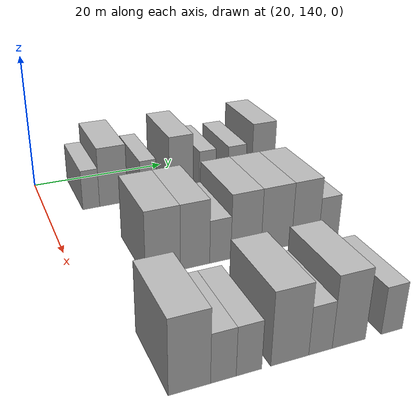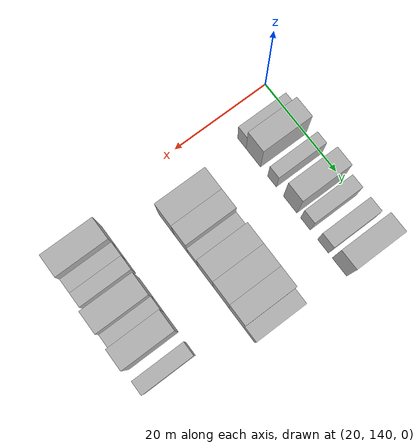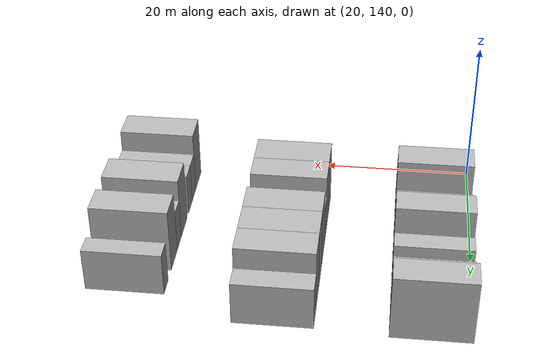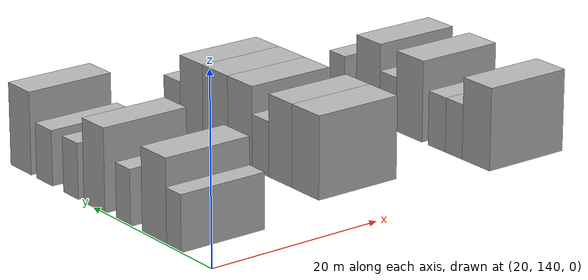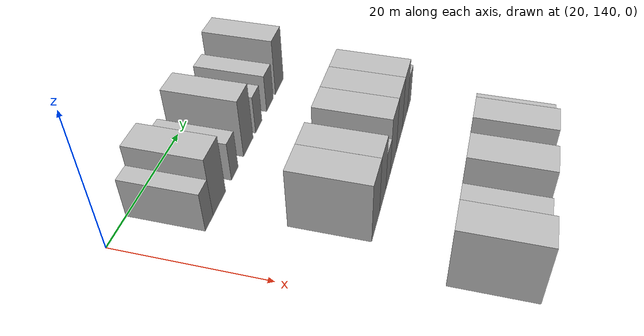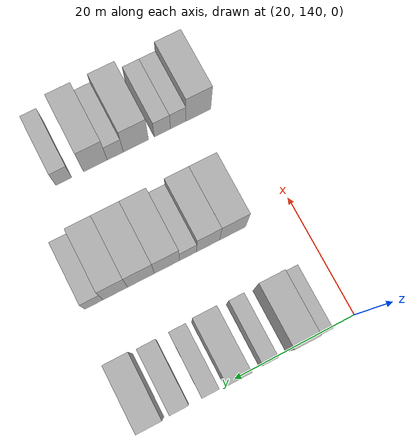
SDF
<sdf version="1.6">
 <world name="default">
  <model name="building_90">
   <static>1</static>
   <pose>25.0000 146.1806 0 0.000000 0.000000 0.000000</pose>
   <link name="link">
    <pose>0 0 3.00 0 0 0</pose>
    <collision name="collision"><geometry><box><size>10.0000 2.4386 6.0000</size></box></geometry></collision>
    <visual name="visual">
     <cast_shadows>0</cast_shadows>
     <geometry><box><size>10.0000 2.4386 6.0000</size></box></geometry>
     <material>
      <script>
       <uri>model://HANNAS_wall/materials/scripts</uri>
       <uri>model://HANNAS_wall/materials/textures</uri>
       <name>vrc/HANNAS_wall</name>
      </script>
     </material>
    </visual>
   </link>
  </model>
  <model name="building_91">
   <static>1</static>
   <pose>25.0000 149.4618 0 0.000000 0.000000 0.000000</pose>
   <link name="link">
    <pose>0 0 4.50 0 0 0</pose>
    <collision name="collision"><geometry><box><size>10.0000 4.1237 9.0000</size></box></geometry></collision>
    <visual name="visual">
     <cast_shadows>0</cast_shadows>
     <geometry><box><size>10.0000 4.1237 9.0000</size></box></geometry>
     <material>
      <script>
       <uri>model://HANNAS_wall/materials/scripts</uri>
       <uri>model://HANNAS_wall/materials/textures</uri>
       <name>vrc/HANNAS_wall</name>
      </script>
     </material>
    </visual>
   </link>
  </model>
  <model name="building_92">
   <static>1</static>
   <pose>25.0000 154.7460 0 0.000000 0.000000 0.000000</pose>
   <link name="link">
    <pose>0 0 3.00 0 0 0</pose>
    <collision name="collision"><geometry><box><size>10.0000 2.4448 6.0000</size></box></geometry></collision>
    <visual name="visual">
     <cast_shadows>0</cast_shadows>
     <geometry><box><size>10.0000 2.4448 6.0000</size></box></geometry>
     <material>
      <script>
       <uri>model://HANNAS_wall/materials/scripts</uri>
       <uri>model://HANNAS_wall/materials/textures</uri>
       <name>vrc/HANNAS_wall</name>
      </script>
     </material>
    </visual>
   </link>
  </model>
  <model name="building_93">
   <static>1</static>
   <pose>25.0000 159.8432 0 0.000000 0.000000 0.000000</pose>
   <link name="link">
    <pose>0 0 4.50 0 0 0</pose>
    <collision name="collision"><geometry><box><size>10.0000 3.7496 9.0000</size></box></geometry></collision>
    <visual name="visual">
     <cast_shadows>0</cast_shadows>
     <geometry><box><size>10.0000 3.7496 9.0000</size></box></geometry>
     <material>
      <script>
       <uri>model://HANNAS_wall/materials/scripts</uri>
       <uri>model://HANNAS_wall/materials/textures</uri>
       <name>vrc/HANNAS_wall</name>
      </script>
     </material>
    </visual>
   </link>
  </model>
  <model name="building_94">
   <static>1</static>
   <pose>25.0000 164.0615 0 0.000000 0.000000 0.000000</pose>
   <link name="link">
    <pose>0 0 3.00 0 0 0</pose>
    <collision name="collision"><geometry><box><size>10.0000 2.6869 6.0000</size></box></geometry></collision>
    <visual name="visual">
     <cast_shadows>0</cast_shadows>
     <geometry><box><size>10.0000 2.6869 6.0000</size></box></geometry>
     <material>
      <script>
       <uri>model://HANNAS_wall/materials/scripts</uri>
       <uri>model://HANNAS_wall/materials/textures</uri>
       <name>vrc/HANNAS_wall</name>
      </script>
     </material>
    </visual>
   </link>
  </model>
  <model name="building_95">
   <static>1</static>
   <pose>25.0000 168.8901 0 0.000000 0.000000 0.000000</pose>
   <link name="link">
    <pose>0 0 3.00 0 0 0</pose>
    <collision name="collision"><geometry><box><size>10.0000 2.9703 6.0000</size></box></geometry></collision>
    <visual name="visual">
     <cast_shadows>0</cast_shadows>
     <geometry><box><size>10.0000 2.9703 6.0000</size></box></geometry>
     <material>
      <script>
       <uri>model://HANNAS_wall/materials/scripts</uri>
       <uri>model://HANNAS_wall/materials/textures</uri>
       <name>vrc/HANNAS_wall</name>
      </script>
     </material>
    </visual>
   </link>
  </model>
  <model name="building_96">
   <static>1</static>
   <pose>25.0000 173.3067 0 0.000000 0.000000 0.000000</pose>
   <link name="link">
    <pose>0 0 4.50 0 0 0</pose>
    <collision name="collision"><geometry><box><size>10.0000 3.8629 9.0000</size></box></geometry></collision>
    <visual name="visual">
     <cast_shadows>0</cast_shadows>
     <geometry><box><size>10.0000 3.8629 9.0000</size></box></geometry>
     <material>
      <script>
       <uri>model://HANNAS_wall/materials/scripts</uri>
       <uri>model://HANNAS_wall/materials/textures</uri>
       <name>vrc/HANNAS_wall</name>
      </script>
     </material>
    </visual>
   </link>
  </model>
  <model name="building_205">
   <static>1</static>
   <pose>44.0000 150.1279 0 0.000000 0.000000 0.000000</pose>
   <link name="link">
    <pose>0 0 4.50 0 0 0</pose>
    <collision name="collision"><geometry><box><size>10.0000 4.4493 9.0000</size></box></geometry></collision>
    <visual name="visual">
     <cast_shadows>0</cast_shadows>
     <geometry><box><size>10.0000 4.4493 9.0000</size></box></geometry>
     <material>
      <script>
       <uri>model://HANNAS_wall/materials/scripts</uri>
       <uri>model://HANNAS_wall/materials/textures</uri>
       <name>vrc/HANNAS_wall</name>
      </script>
     </material>
    </visual>
   </link>
  </model>
  <model name="building_206">
   <static>1</static>
   <pose>44.0000 154.2932 0 0.000000 0.000000 0.000000</pose>
   <link name="link">
    <pose>0 0 4.50 0 0 0</pose>
    <collision name="collision"><geometry><box><size>10.0000 3.8811 9.0000</size></box></geometry></collision>
    <visual name="visual">
     <cast_shadows>0</cast_shadows>
     <geometry><box><size>10.0000 3.8811 9.0000</size></box></geometry>
     <material>
      <script>
       <uri>model://HANNAS_wall/materials/scripts</uri>
       <uri>model://HANNAS_wall/materials/textures</uri>
       <name>vrc/HANNAS_wall</name>
      </script>
     </material>
    </visual>
   </link>
  </model>
  <model name="building_207">
   <static>1</static>
   <pose>44.0000 157.6631 0 0.000000 0.000000 0.000000</pose>
   <link name="link">
    <pose>0 0 3.00 0 0 0</pose>
    <collision name="collision"><geometry><box><size>10.0000 2.8587 6.0000</size></box></geometry></collision>
    <visual name="visual">
     <cast_shadows>0</cast_shadows>
     <geometry><box><size>10.0000 2.8587 6.0000</size></box></geometry>
     <material>
      <script>
       <uri>model://HANNAS_wall/materials/scripts</uri>
       <uri>model://HANNAS_wall/materials/textures</uri>
       <name>vrc/HANNAS_wall</name>
      </script>
     </material>
    </visual>
   </link>
  </model>
  <model name="building_208">
   <static>1</static>
   <pose>44.0000 161.1886 0 0.000000 0.000000 0.000000</pose>
   <link name="link">
    <pose>0 0 4.50 0 0 0</pose>
    <collision name="collision"><geometry><box><size>10.0000 4.1923 9.0000</size></box></geometry></collision>
    <visual name="visual">
     <cast_shadows>0</cast_shadows>
     <geometry><box><size>10.0000 4.1923 9.0000</size></box></geometry>
     <material>
      <script>
       <uri>model://HANNAS_wall/materials/scripts</uri>
       <uri>model://HANNAS_wall/materials/textures</uri>
       <name>vrc/HANNAS_wall</name>
      </script>
     </material>
    </visual>
   </link>
  </model>
  <model name="building_209">
   <static>1</static>
   <pose>44.0000 165.4844 0 0.000000 0.000000 0.000000</pose>
   <link name="link">
    <pose>0 0 4.50 0 0 0</pose>
    <collision name="collision"><geometry><box><size>10.0000 4.3994 9.0000</size></box></geometry></collision>
    <visual name="visual">
     <cast_shadows>0</cast_shadows>
     <geometry><box><size>10.0000 4.3994 9.0000</size></box></geometry>
     <material>
      <script>
       <uri>model://HANNAS_wall/materials/scripts</uri>
       <uri>model://HANNAS_wall/materials/textures</uri>
       <name>vrc/HANNAS_wall</name>
      </script>
     </material>
    </visual>
   </link>
  </model>
  <model name="building_210">
   <static>1</static>
   <pose>44.0000 169.7006 0 0.000000 0.000000 0.000000</pose>
   <link name="link">
    <pose>0 0 4.50 0 0 0</pose>
    <collision name="collision"><geometry><box><size>10.0000 4.0331 9.0000</size></box></geometry></collision>
    <visual name="visual">
     <cast_shadows>0</cast_shadows>
     <geometry><box><size>10.0000 4.0331 9.0000</size></box></geometry>
     <material>
      <script>
       <uri>model://HANNAS_wall/materials/scripts</uri>
       <uri>model://HANNAS_wall/materials/textures</uri>
       <name>vrc/HANNAS_wall</name>
      </script>
     </material>
    </visual>
   </link>
  </model>
  <model name="building_211">
   <static>1</static>
   <pose>44.0000 173.2096 0 0.000000 0.000000 0.000000</pose>
   <link name="link">
    <pose>0 0 3.00 0 0 0</pose>
    <collision name="collision"><geometry><box><size>10.0000 2.9848 6.0000</size></box></geometry></collision>
    <visual name="visual">
     <cast_shadows>0</cast_shadows>
     <geometry><box><size>10.0000 2.9848 6.0000</size></box></geometry>
     <material>
      <script>
       <uri>model://HANNAS_wall/materials/scripts</uri>
       <uri>model://HANNAS_wall/materials/textures</uri>
       <name>vrc/HANNAS_wall</name>
      </script>
     </material>
    </visual>
   </link>
  </model>
  <model name="building_318">
   <static>1</static>
   <pose>63.0000 145.9641 0 0.000000 0.000000 0.000000</pose>
   <link name="link">
    <pose>0 0 4.50 0 0 0</pose>
    <collision name="collision"><geometry><box><size>10.0000 4.3446 9.0000</size></box></geometry></collision>
    <visual name="visual">
     <cast_shadows>0</cast_shadows>
     <geometry><box><size>10.0000 4.3446 9.0000</size></box></geometry>
     <material>
      <script>
       <uri>model://HANNAS_wall/materials/scripts</uri>
       <uri>model://HANNAS_wall/materials/textures</uri>
       <name>vrc/HANNAS_wall</name>
      </script>
     </material>
    </visual>
   </link>
  </model>
  <model name="building_319">
   <static>1</static>
   <pose>63.0000 149.4969 0 0.000000 0.000000 0.000000</pose>
   <link name="link">
    <pose>0 0 3.00 0 0 0</pose>
    <collision name="collision"><geometry><box><size>10.0000 2.7210 6.0000</size></box></geometry></collision>
    <visual name="visual">
     <cast_shadows>0</cast_shadows>
     <geometry><box><size>10.0000 2.7210 6.0000</size></box></geometry>
     <material>
      <script>
       <uri>model://HANNAS_wall/materials/scripts</uri>
       <uri>model://HANNAS_wall/materials/textures</uri>
       <name>vrc/HANNAS_wall</name>
      </script>
     </material>
    </visual>
   </link>
  </model>
  <model name="building_320">
   <static>1</static>
   <pose>63.0000 152.2519 0 0.000000 0.000000 0.000000</pose>
   <link name="link">
    <pose>0 0 3.00 0 0 0</pose>
    <collision name="collision"><geometry><box><size>10.0000 2.7889 6.0000</size></box></geometry></collision>
    <visual name="visual">
     <cast_shadows>0</cast_shadows>
     <geometry><box><size>10.0000 2.7889 6.0000</size></box></geometry>
     <material>
      <script>
       <uri>model://HANNAS_wall/materials/scripts</uri>
       <uri>model://HANNAS_wall/materials/textures</uri>
       <name>vrc/HANNAS_wall</name>
      </script>
     </material>
    </visual>
   </link>
  </model>
  <model name="building_321">
   <static>1</static>
   <pose>63.0000 156.8124 0 0.000000 0.000000 0.000000</pose>
   <link name="link">
    <pose>0 0 4.50 0 0 0</pose>
    <collision name="collision"><geometry><box><size>10.0000 4.3320 9.0000</size></box></geometry></collision>
    <visual name="visual">
     <cast_shadows>0</cast_shadows>
     <geometry><box><size>10.0000 4.3320 9.0000</size></box></geometry>
     <material>
      <script>
       <uri>model://HANNAS_wall/materials/scripts</uri>
       <uri>model://HANNAS_wall/materials/textures</uri>
       <name>vrc/HANNAS_wall</name>
      </script>
     </material>
    </visual>
   </link>
  </model>
  <model name="building_322">
   <static>1</static>
   <pose>63.0000 160.3599 0 0.000000 0.000000 0.000000</pose>
   <link name="link">
    <pose>0 0 3.00 0 0 0</pose>
    <collision name="collision"><geometry><box><size>10.0000 2.7631 6.0000</size></box></geometry></collision>
    <visual name="visual">
     <cast_shadows>0</cast_shadows>
     <geometry><box><size>10.0000 2.7631 6.0000</size></box></geometry>
     <material>
      <script>
       <uri>model://HANNAS_wall/materials/scripts</uri>
       <uri>model://HANNAS_wall/materials/textures</uri>
       <name>vrc/HANNAS_wall</name>
      </script>
     </material>
    </visual>
   </link>
  </model>
  <model name="building_323">
   <static>1</static>
   <pose>63.0000 163.7608 0 0.000000 0.000000 0.000000</pose>
   <link name="link">
    <pose>0 0 4.50 0 0 0</pose>
    <collision name="collision"><geometry><box><size>10.0000 4.0387 9.0000</size></box></geometry></collision>
    <visual name="visual">
     <cast_shadows>0</cast_shadows>
     <geometry><box><size>10.0000 4.0387 9.0000</size></box></geometry>
     <material>
      <script>
       <uri>model://HANNAS_wall/materials/scripts</uri>
       <uri>model://HANNAS_wall/materials/textures</uri>
       <name>vrc/HANNAS_wall</name>
      </script>
     </material>
    </visual>
   </link>
  </model>
  <model name="building_324">
   <static>1</static>
   <pose>63.0000 169.1211 0 0.000000 0.000000 0.000000</pose>
   <link name="link">
    <pose>0 0 3.00 0 0 0</pose>
    <collision name="collision"><geometry><box><size>10.0000 2.6819 6.0000</size></box></geometry></collision>
    <visual name="visual">
     <cast_shadows>0</cast_shadows>
     <geometry><box><size>10.0000 2.6819 6.0000</size></box></geometry>
     <material>
      <script>
       <uri>model://HANNAS_wall/materials/scripts</uri>
       <uri>model://HANNAS_wall/materials/textures</uri>
       <name>vrc/HANNAS_wall</name>
      </script>
     </material>
    </visual>
   </link>
  </model>
 </world>
</sdf>
